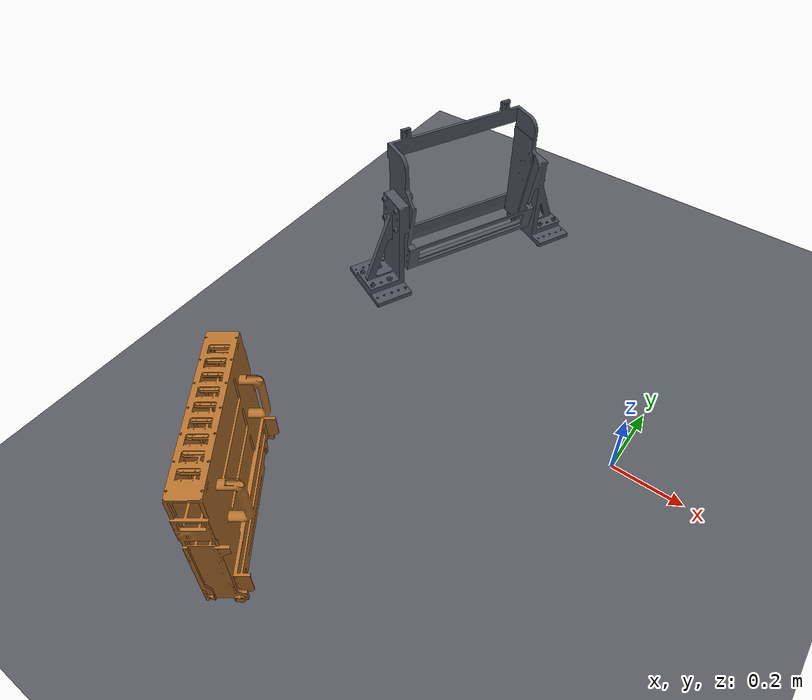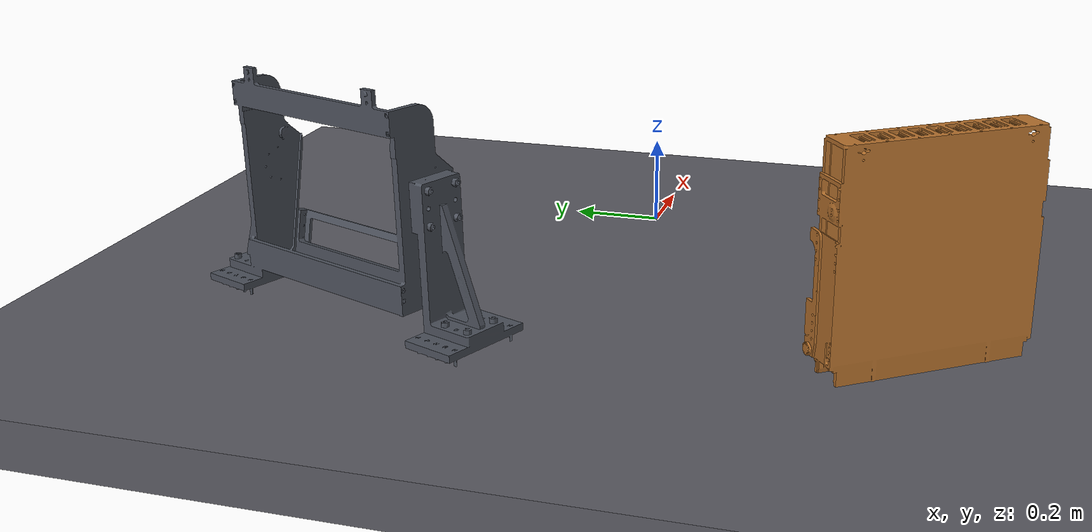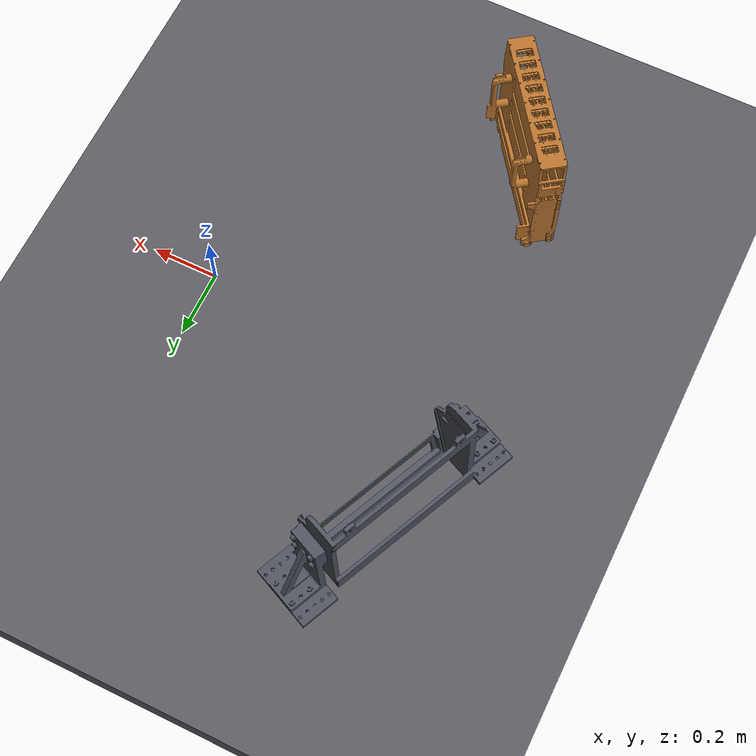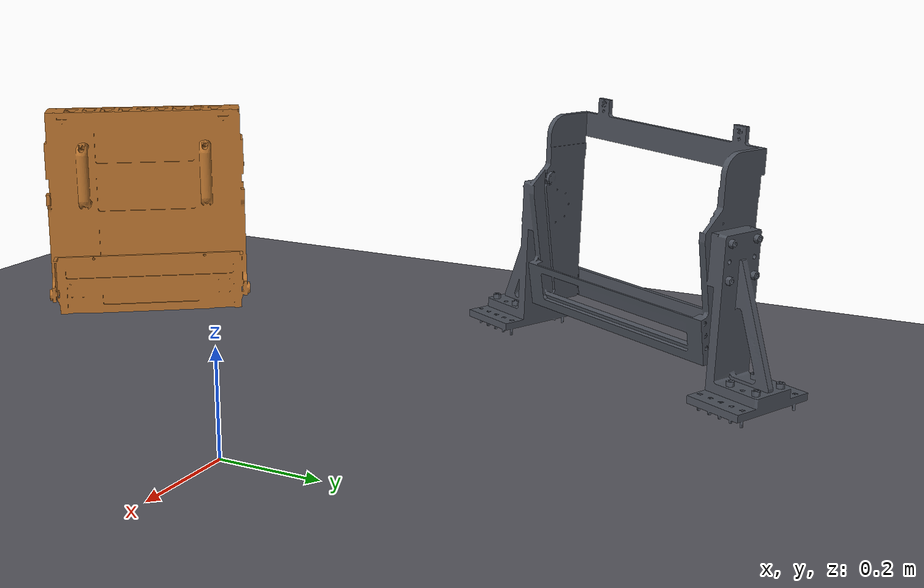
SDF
<?xml version="1.0"?>
<sdf version="1.9">
  <world name="cs625_insertion_scene">
    <physics name="cs625_task_physics" type="ignored">
      <max_step_size>0.001</max_step_size>
      <real_time_factor>1.0</real_time_factor>
    </physics>

    <plugin filename="ignition-gazebo-physics-system" name="gz::sim::systems::Physics"/>
    <plugin filename="ignition-gazebo-sensors-system" name="gz::sim::systems::Sensors">
      <render_engine>ogre2</render_engine>
    </plugin>
    <plugin filename="ignition-gazebo-user-commands-system" name="gz::sim::systems::UserCommands"/>
    <plugin filename="ignition-gazebo-scene-broadcaster-system" name="gz::sim::systems::SceneBroadcaster"/>
    <plugin filename="gz-sim-contact-system" name="gz::sim::systems::Contact"/>

    <light type="directional" name="sun">
      <pose>0 0 5 0 0 0</pose>
      <diffuse>1.0 1.0 1.0 1</diffuse>
      <specular>0.3 0.3 0.3 1</specular>
      <direction>-0.5 0.1 -0.9</direction>
    </light>

    <model name="ground_plane">
      <static>true</static>
      <pose>0 0 -0.05 0 0 0</pose>
      <link name="link">
        <collision name="collision">
          <geometry><box><size>10 10 0.1</size></box></geometry>
        </collision>
        <sensor name="task_ground_contact" type="contact">
          <contact><collision>collision</collision></contact>
          <always_on>true</always_on>
          <update_rate>100</update_rate>
          <topic>/cs625_task/contacts/ground</topic>
        </sensor>
        <visual name="visual">
          <geometry><box><size>10 10 0.1</size></box></geometry>
          <material><ambient>0.25 0.25 0.27 1</ambient><diffuse>0.35 0.35 0.38 1</diffuse></material>
        </visual>
      </link>
    </model>

    <!-- Wedge slot fixture, static, in the SolidWorks assembly frame. -->
    <include>
      <uri>model://cs625_task/slot_fixture</uri>
      <name>slot_fixture</name>
      <static>true</static>
      <pose>-0.850000000 0.490000000 0.273370000 3.110000000 0.080000000 -0.430000000</pose>
    </include>

    <!-- Shielding module, initial pose: resting on the work surface. -->
    <include>
      <uri>model://cs625_task/shielding_module</uri>
      <name>shielding_module</name>
      <pose>-0.510000000 -0.810000000 0.225173000 -3.140000000 0.000000000 -0.940000000</pose>
    </include>
  </world>
</sdf>

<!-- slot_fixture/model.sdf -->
<sdf version="1.9">
  <model name="slot_fixture">
    <static>true</static>
    <link name="slot_fixture_link">
      <collision name="collision">
        <geometry>
          <mesh>
            <uri>model://cs625_task/slot_fixture/meshes/slot_fixture.stl</uri>
          </mesh>
        </geometry>
        <surface>
          <friction>
            <ode><mu>0.4</mu><mu2>0.4</mu2></ode>
          </friction>
        </surface>
      </collision>

      <visual name="visual">
        <geometry>
          <mesh>
            <uri>model://cs625_task/slot_fixture/meshes/slot_fixture.stl</uri>
          </mesh>
        </geometry>
        <material>
          <ambient>0.30 0.32 0.36 1</ambient>
          <diffuse>0.30 0.32 0.36 1</diffuse>
        </material>
      </visual>
    </link>
  </model>
</sdf>

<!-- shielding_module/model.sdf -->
<sdf version="1.9">
  <model name="shielding_module">
    <link name="shielding_module_link">
      <inertial>
        <pose>-0.20849 0.06355 -0.01944 0 0 0</pose>
        <mass>19.0</mass>
        <inertia>
          <ixx>3.993602428e-01</ixx>
          <ixy>2.092340000e-05</ixy>
          <ixz>1.099317000e-05</ixz>
          <iyy>7.891516666e-01</iyy>
          <iyz>4.086532080e-03</iyz>
          <izz>4.349741182e-01</izz>
        </inertia>
      </inertial>

      <collision name="envelope">
        <pose>-0.208500 0.043503 -0.007500 0 0 0</pose>
        <geometry>
          <box><size>0.4546 0.13099 0.4650</size></box>
        </geometry>
        <surface>
          <friction>
            <ode><mu>0.6</mu><mu2>0.6</mu2></ode>
          </friction>
        </surface>
      </collision>

      <visual name="visual">
        <geometry>
          <mesh>
            <uri>model://cs625_task/shielding_module/meshes/shielding_module.stl</uri>
          </mesh>
        </geometry>
        <material>
          <ambient>0.72 0.45 0.18 1</ambient>
          <diffuse>0.72 0.45 0.18 1</diffuse>
        </material>
      </visual>

      <!-- Physical contact evidence for the insertion episode.  Same mechanism
           as the occluder and target sensors in the P7 worlds. -->
      <sensor name="module_contact" type="contact">
        <contact>
          <collision>envelope</collision>
        </contact>
        <always_on>true</always_on>
        <update_rate>100</update_rate>
        <topic>/cs625_task/contacts/module</topic>
      </sensor>
    </link>
  </model>
</sdf>
